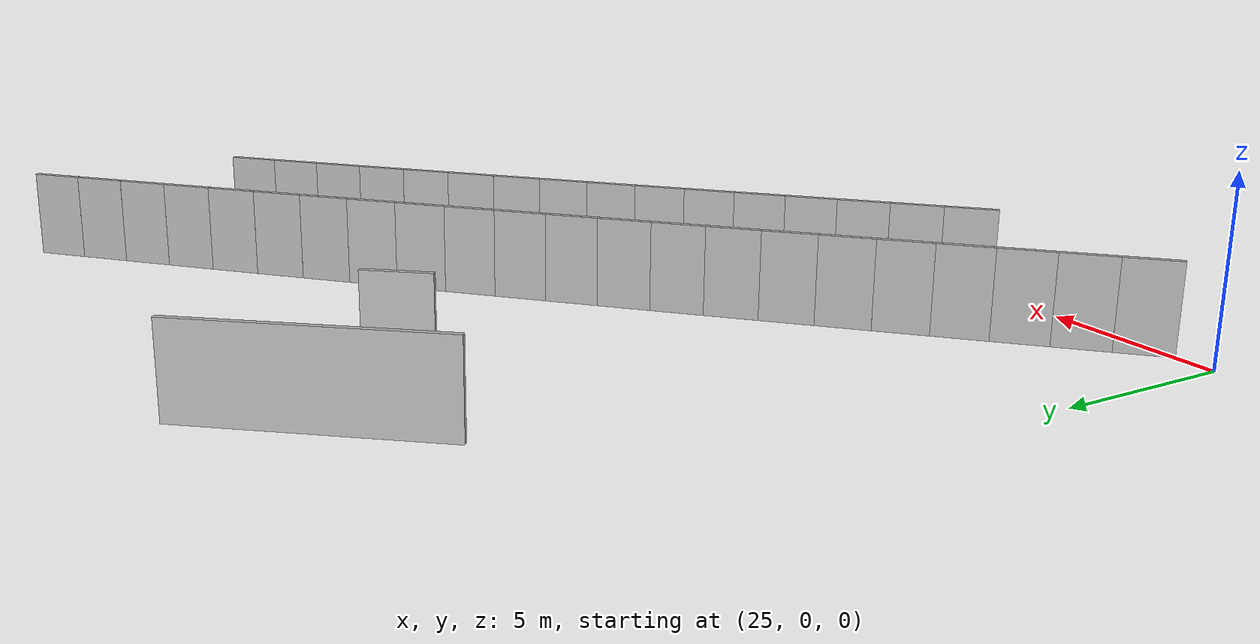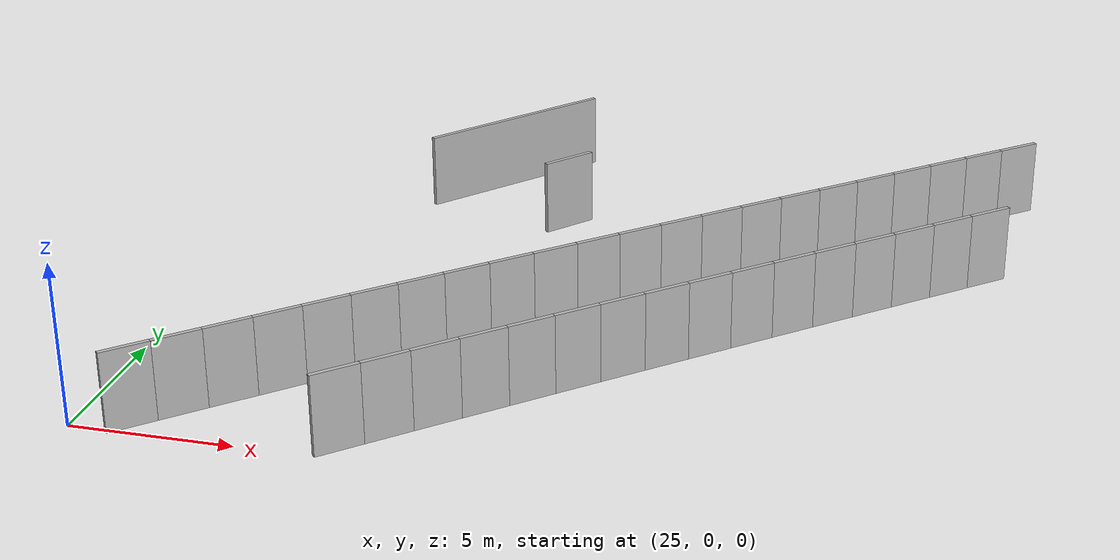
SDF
<?xml version="1.0" ?>
<sdf version="1.6">
  <model name="sps_1042">
    <pose frame="">0 0 0 0 -0 0</pose>
    <static>1</static>
    <self_collide>0</self_collide>
    <allow_auto_disable>0</allow_auto_disable>
    <link name="Wall215">
      <kinematic>0</kinematic>
      <gravity>1</gravity>
      <self_collide>0</self_collide>
      <collision name="collision">
        <geometry>
          <box>
            <size>6.97983 0.15 2.5</size>
          </box>
        </geometry>
        <pose frame="">0 0 0 0 -0 0</pose>
      </collision>
      <visual name="visual">
        <geometry>
          <box>
            <size>6.97983 0.15 2.5</size>
          </box>
        </geometry>
        <pose frame="">0 0 0 0 -0 0</pose>
        <cast_shadows>1</cast_shadows>
        <transparency>0.0</transparency>
      </visual>
      <pose frame="">32.2306 20.5702 1.25 0 0 -2.26727</pose>
    </link>
    <link name="Wall219">
      <kinematic>0</kinematic>
      <gravity>1</gravity>
      <self_collide>0</self_collide>
      <collision name="collision">
        <geometry>
          <box>
            <size>1.88109 0.15 2.5</size>
          </box>
        </geometry>
        <pose frame="">0 0 0 0 -0 0</pose>
      </collision>
      <visual name="visual">
        <geometry>
          <box>
            <size>1.88109 0.15 2.5</size>
          </box>
        </geometry>
        <pose frame="">0 0 0 0 -0 0</pose>
        <cast_shadows>1</cast_shadows>
        <transparency>0.0</transparency>
      </visual>
      <pose frame="">35.0712 17.1703 1.25 0 -0 0.876505</pose>
    </link>
    <link name="Wall3327">
      <kinematic>0</kinematic>
      <gravity>1</gravity>
      <self_collide>0</self_collide>
      <collision name="collision">
        <geometry>
          <box>
            <size>1.4966 0.15 2.5</size>
          </box>
        </geometry>
        <pose frame="">0 0 0 0 -0 0</pose>
      </collision>
      <visual name="visual">
        <geometry>
          <box>
            <size>1.4966 0.15 2.5</size>
          </box>
        </geometry>
        <pose frame="">0 0 0 0 -0 0</pose>
        <cast_shadows>1</cast_shadows>
        <transparency>0.0</transparency>
      </visual>
      <pose frame="">49.3434 15.7908 1.25 0 0 -2.40714</pose>
    </link>
    <link name="Wall3328">
      <kinematic>0</kinematic>
      <gravity>1</gravity>
      <self_collide>0</self_collide>
      <collision name="collision">
        <geometry>
          <box>
            <size>1.4964 0.15 2.5</size>
          </box>
        </geometry>
        <pose frame="">0 0 0 0 -0 0</pose>
      </collision>
      <visual name="visual">
        <geometry>
          <box>
            <size>1.4964 0.15 2.5</size>
          </box>
        </geometry>
        <pose frame="">0 0 0 0 -0 0</pose>
        <cast_shadows>1</cast_shadows>
        <transparency>0.0</transparency>
      </visual>
      <pose frame="">48.2335 14.787 1.25 0 0 -2.40553</pose>
    </link>
    <link name="Wall3329">
      <kinematic>0</kinematic>
      <gravity>1</gravity>
      <self_collide>0</self_collide>
      <collision name="collision">
        <geometry>
          <box>
            <size>1.49667 0.15 2.5</size>
          </box>
        </geometry>
        <pose frame="">0 0 0 0 -0 0</pose>
      </collision>
      <visual name="visual">
        <geometry>
          <box>
            <size>1.49667 0.15 2.5</size>
          </box>
        </geometry>
        <pose frame="">0 0 0 0 -0 0</pose>
        <cast_shadows>1</cast_shadows>
        <transparency>0.0</transparency>
      </visual>
      <pose frame="">47.1252 13.7814 1.25 0 0 -2.40394</pose>
    </link>
    <link name="Wall3330">
      <kinematic>0</kinematic>
      <gravity>1</gravity>
      <self_collide>0</self_collide>
      <collision name="collision">
        <geometry>
          <box>
            <size>1.49638 0.15 2.5</size>
          </box>
        </geometry>
        <pose frame="">0 0 0 0 -0 0</pose>
      </collision>
      <visual name="visual">
        <geometry>
          <box>
            <size>1.49638 0.15 2.5</size>
          </box>
        </geometry>
        <pose frame="">0 0 0 0 -0 0</pose>
        <cast_shadows>1</cast_shadows>
        <transparency>0.0</transparency>
      </visual>
      <pose frame="">46.0185 12.774 1.25 0 0 -2.40233</pose>
    </link>
    <link name="Wall3331">
      <kinematic>0</kinematic>
      <gravity>1</gravity>
      <self_collide>0</self_collide>
      <collision name="collision">
        <geometry>
          <box>
            <size>1.49663 0.15 2.5</size>
          </box>
        </geometry>
        <pose frame="">0 0 0 0 -0 0</pose>
      </collision>
      <visual name="visual">
        <geometry>
          <box>
            <size>1.49663 0.15 2.5</size>
          </box>
        </geometry>
        <pose frame="">0 0 0 0 -0 0</pose>
        <cast_shadows>1</cast_shadows>
        <transparency>0.0</transparency>
      </visual>
      <pose frame="">44.9134 11.7649 1.25 0 0 -2.40082</pose>
    </link>
    <link name="Wall3332">
      <kinematic>0</kinematic>
      <gravity>1</gravity>
      <self_collide>0</self_collide>
      <collision name="collision">
        <geometry>
          <box>
            <size>1.49635 0.15 2.5</size>
          </box>
        </geometry>
        <pose frame="">0 0 0 0 -0 0</pose>
      </collision>
      <visual name="visual">
        <geometry>
          <box>
            <size>1.49635 0.15 2.5</size>
          </box>
        </geometry>
        <pose frame="">0 0 0 0 -0 0</pose>
        <cast_shadows>1</cast_shadows>
        <transparency>0.0</transparency>
      </visual>
      <pose frame="">43.8099 10.7541 1.25 0 0 -2.39921</pose>
    </link>
    <link name="Wall3333">
      <kinematic>0</kinematic>
      <gravity>1</gravity>
      <self_collide>0</self_collide>
      <collision name="collision">
        <geometry>
          <box>
            <size>1.49655 0.15 2.5</size>
          </box>
        </geometry>
        <pose frame="">0 0 0 0 -0 0</pose>
      </collision>
      <visual name="visual">
        <geometry>
          <box>
            <size>1.49655 0.15 2.5</size>
          </box>
        </geometry>
        <pose frame="">0 0 0 0 -0 0</pose>
        <cast_shadows>1</cast_shadows>
        <transparency>0.0</transparency>
      </visual>
      <pose frame="">42.708 9.74159 1.25 0 0 -2.39768</pose>
    </link>
    <link name="Wall3334">
      <kinematic>0</kinematic>
      <gravity>1</gravity>
      <self_collide>0</self_collide>
      <collision name="collision">
        <geometry>
          <box>
            <size>1.49641 0.15 2.5</size>
          </box>
        </geometry>
        <pose frame="">0 0 0 0 -0 0</pose>
      </collision>
      <visual name="visual">
        <geometry>
          <box>
            <size>1.49641 0.15 2.5</size>
          </box>
        </geometry>
        <pose frame="">0 0 0 0 -0 0</pose>
        <cast_shadows>1</cast_shadows>
        <transparency>0.0</transparency>
      </visual>
      <pose frame="">41.6077 8.72728 1.25 0 0 -2.39598</pose>
    </link>
    <link name="Wall3335">
      <kinematic>0</kinematic>
      <gravity>1</gravity>
      <self_collide>0</self_collide>
      <collision name="collision">
        <geometry>
          <box>
            <size>1.49621 0.15 2.5</size>
          </box>
        </geometry>
        <pose frame="">0 0 0 0 -0 0</pose>
      </collision>
      <visual name="visual">
        <geometry>
          <box>
            <size>1.49621 0.15 2.5</size>
          </box>
        </geometry>
        <pose frame="">0 0 0 0 -0 0</pose>
        <cast_shadows>1</cast_shadows>
        <transparency>0.0</transparency>
      </visual>
      <pose frame="">40.5091 7.7115 1.25 0 0 -2.3948</pose>
    </link>
    <link name="Wall3336">
      <kinematic>0</kinematic>
      <gravity>1</gravity>
      <self_collide>0</self_collide>
      <collision name="collision">
        <geometry>
          <box>
            <size>1.4964 0.15 2.5</size>
          </box>
        </geometry>
        <pose frame="">0 0 0 0 -0 0</pose>
      </collision>
      <visual name="visual">
        <geometry>
          <box>
            <size>1.4964 0.15 2.5</size>
          </box>
        </geometry>
        <pose frame="">0 0 0 0 -0 0</pose>
        <cast_shadows>1</cast_shadows>
        <transparency>0.0</transparency>
      </visual>
      <pose frame="">39.4119 6.69401 1.25 0 0 -2.39286</pose>
    </link>
    <link name="Wall3337">
      <kinematic>0</kinematic>
      <gravity>1</gravity>
      <self_collide>0</self_collide>
      <collision name="collision">
        <geometry>
          <box>
            <size>1.49674 0.15 2.5</size>
          </box>
        </geometry>
        <pose frame="">0 0 0 0 -0 0</pose>
      </collision>
      <visual name="visual">
        <geometry>
          <box>
            <size>1.49674 0.15 2.5</size>
          </box>
        </geometry>
        <pose frame="">0 0 0 0 -0 0</pose>
        <cast_shadows>1</cast_shadows>
        <transparency>0.0</transparency>
      </visual>
      <pose frame="">38.3165 5.67439 1.25 0 0 -2.39124</pose>
    </link>
    <link name="Wall3338">
      <kinematic>0</kinematic>
      <gravity>1</gravity>
      <self_collide>0</self_collide>
      <collision name="collision">
        <geometry>
          <box>
            <size>1.49637 0.15 2.5</size>
          </box>
        </geometry>
        <pose frame="">0 0 0 0 -0 0</pose>
      </collision>
      <visual name="visual">
        <geometry>
          <box>
            <size>1.49637 0.15 2.5</size>
          </box>
        </geometry>
        <pose frame="">0 0 0 0 -0 0</pose>
        <cast_shadows>1</cast_shadows>
        <transparency>0.0</transparency>
      </visual>
      <pose frame="">37.2226 4.65309 1.25 0 0 -2.38977</pose>
    </link>
    <link name="Wall3339">
      <kinematic>0</kinematic>
      <gravity>1</gravity>
      <self_collide>0</self_collide>
      <collision name="collision">
        <geometry>
          <box>
            <size>1.49654 0.15 2.5</size>
          </box>
        </geometry>
        <pose frame="">0 0 0 0 -0 0</pose>
      </collision>
      <visual name="visual">
        <geometry>
          <box>
            <size>1.49654 0.15 2.5</size>
          </box>
        </geometry>
        <pose frame="">0 0 0 0 -0 0</pose>
        <cast_shadows>1</cast_shadows>
        <transparency>0.0</transparency>
      </visual>
      <pose frame="">36.1304 3.63011 1.25 0 0 -2.38804</pose>
    </link>
    <link name="Wall3340">
      <kinematic>0</kinematic>
      <gravity>1</gravity>
      <self_collide>0</self_collide>
      <collision name="collision">
        <geometry>
          <box>
            <size>1.49643 0.15 2.5</size>
          </box>
        </geometry>
        <pose frame="">0 0 0 0 -0 0</pose>
      </collision>
      <visual name="visual">
        <geometry>
          <box>
            <size>1.49643 0.15 2.5</size>
          </box>
        </geometry>
        <pose frame="">0 0 0 0 -0 0</pose>
        <cast_shadows>1</cast_shadows>
        <transparency>0.0</transparency>
      </visual>
      <pose frame="">35.0398 2.60539 1.25 0 0 -2.38663</pose>
    </link>
    <link name="Wall3341">
      <kinematic>0</kinematic>
      <gravity>1</gravity>
      <self_collide>0</self_collide>
      <collision name="collision">
        <geometry>
          <box>
            <size>1.49635 0.15 2.5</size>
          </box>
        </geometry>
        <pose frame="">0 0 0 0 -0 0</pose>
      </collision>
      <visual name="visual">
        <geometry>
          <box>
            <size>1.49635 0.15 2.5</size>
          </box>
        </geometry>
        <pose frame="">0 0 0 0 -0 0</pose>
        <cast_shadows>1</cast_shadows>
        <transparency>0.0</transparency>
      </visual>
      <pose frame="">33.9509 1.57899 1.25 0 0 -2.38484</pose>
    </link>
    <link name="Wall3342">
      <kinematic>0</kinematic>
      <gravity>1</gravity>
      <self_collide>0</self_collide>
      <collision name="collision">
        <geometry>
          <box>
            <size>1.49638 0.15 2.5</size>
          </box>
        </geometry>
        <pose frame="">0 0 0 0 -0 0</pose>
      </collision>
      <visual name="visual">
        <geometry>
          <box>
            <size>1.49638 0.15 2.5</size>
          </box>
        </geometry>
        <pose frame="">0 0 0 0 -0 0</pose>
        <cast_shadows>1</cast_shadows>
        <transparency>0.0</transparency>
      </visual>
      <pose frame="">32.8636 0.550918 1.25 0 0 -2.38351</pose>
    </link>
    <link name="Wall5935">
      <kinematic>0</kinematic>
      <gravity>1</gravity>
      <self_collide>0</self_collide>
      <collision name="collision">
        <geometry>
          <box>
            <size>1.50294 0.15 2.5</size>
          </box>
        </geometry>
        <pose frame="">0 0 0 0 -0 0</pose>
      </collision>
      <visual name="visual">
        <geometry>
          <box>
            <size>1.50294 0.15 2.5</size>
          </box>
        </geometry>
        <pose frame="">0 0 0 0 -0 0</pose>
        <cast_shadows>1</cast_shadows>
        <transparency>0.0</transparency>
      </visual>
      <pose frame="">49.9123 21.8683 1.25 0 0 -2.41182</pose>
    </link>
    <link name="Wall5936">
      <kinematic>0</kinematic>
      <gravity>1</gravity>
      <self_collide>0</self_collide>
      <collision name="collision">
        <geometry>
          <box>
            <size>1.50308 0.15 2.5</size>
          </box>
        </geometry>
        <pose frame="">0 0 0 0 -0 0</pose>
      </collision>
      <visual name="visual">
        <geometry>
          <box>
            <size>1.50308 0.15 2.5</size>
          </box>
        </geometry>
        <pose frame="">0 0 0 0 -0 0</pose>
        <cast_shadows>1</cast_shadows>
        <transparency>0.0</transparency>
      </visual>
      <pose frame="">48.7929 20.8654 1.25 0 0 -2.41032</pose>
    </link>
    <link name="Wall5937">
      <kinematic>0</kinematic>
      <gravity>1</gravity>
      <self_collide>0</self_collide>
      <collision name="collision">
        <geometry>
          <box>
            <size>1.50317 0.15 2.5</size>
          </box>
        </geometry>
        <pose frame="">0 0 0 0 -0 0</pose>
      </collision>
      <visual name="visual">
        <geometry>
          <box>
            <size>1.50317 0.15 2.5</size>
          </box>
        </geometry>
        <pose frame="">0 0 0 0 -0 0</pose>
        <cast_shadows>1</cast_shadows>
        <transparency>0.0</transparency>
      </visual>
      <pose frame="">47.6749 19.8607 1.25 0 0 -2.40873</pose>
    </link>
    <link name="Wall5938">
      <kinematic>0</kinematic>
      <gravity>1</gravity>
      <self_collide>0</self_collide>
      <collision name="collision">
        <geometry>
          <box>
            <size>1.50313 0.15 2.5</size>
          </box>
        </geometry>
        <pose frame="">0 0 0 0 -0 0</pose>
      </collision>
      <visual name="visual">
        <geometry>
          <box>
            <size>1.50313 0.15 2.5</size>
          </box>
        </geometry>
        <pose frame="">0 0 0 0 -0 0</pose>
        <cast_shadows>1</cast_shadows>
        <transparency>0.0</transparency>
      </visual>
      <pose frame="">46.5584 18.8542 1.25 0 0 -2.40712</pose>
    </link>
    <link name="Wall5939">
      <kinematic>0</kinematic>
      <gravity>1</gravity>
      <self_collide>0</self_collide>
      <collision name="collision">
        <geometry>
          <box>
            <size>1.50326 0.15 2.5</size>
          </box>
        </geometry>
        <pose frame="">0 0 0 0 -0 0</pose>
      </collision>
      <visual name="visual">
        <geometry>
          <box>
            <size>1.50326 0.15 2.5</size>
          </box>
        </geometry>
        <pose frame="">0 0 0 0 -0 0</pose>
        <cast_shadows>1</cast_shadows>
        <transparency>0.0</transparency>
      </visual>
      <pose frame="">45.4437 17.8458 1.25 0 0 -2.40539</pose>
    </link>
    <link name="Wall5940">
      <kinematic>0</kinematic>
      <gravity>1</gravity>
      <self_collide>0</self_collide>
      <collision name="collision">
        <geometry>
          <box>
            <size>1.50293 0.15 2.5</size>
          </box>
        </geometry>
        <pose frame="">0 0 0 0 -0 0</pose>
      </collision>
      <visual name="visual">
        <geometry>
          <box>
            <size>1.50293 0.15 2.5</size>
          </box>
        </geometry>
        <pose frame="">0 0 0 0 -0 0</pose>
        <cast_shadows>1</cast_shadows>
        <transparency>0.0</transparency>
      </visual>
      <pose frame="">44.3306 16.8357 1.25 0 0 -2.40394</pose>
    </link>
    <link name="Wall5941">
      <kinematic>0</kinematic>
      <gravity>1</gravity>
      <self_collide>0</self_collide>
      <collision name="collision">
        <geometry>
          <box>
            <size>1.50304 0.15 2.5</size>
          </box>
        </geometry>
        <pose frame="">0 0 0 0 -0 0</pose>
      </collision>
      <visual name="visual">
        <geometry>
          <box>
            <size>1.50304 0.15 2.5</size>
          </box>
        </geometry>
        <pose frame="">0 0 0 0 -0 0</pose>
        <cast_shadows>1</cast_shadows>
        <transparency>0.0</transparency>
      </visual>
      <pose frame="">43.219 15.824 1.25 0 0 -2.40241</pose>
    </link>
    <link name="Wall5942">
      <kinematic>0</kinematic>
      <gravity>1</gravity>
      <self_collide>0</self_collide>
      <collision name="collision">
        <geometry>
          <box>
            <size>1.5031 0.15 2.5</size>
          </box>
        </geometry>
        <pose frame="">0 0 0 0 -0 0</pose>
      </collision>
      <visual name="visual">
        <geometry>
          <box>
            <size>1.5031 0.15 2.5</size>
          </box>
        </geometry>
        <pose frame="">0 0 0 0 -0 0</pose>
        <cast_shadows>1</cast_shadows>
        <transparency>0.0</transparency>
      </visual>
      <pose frame="">42.1091 14.8105 1.25 0 0 -2.4008</pose>
    </link>
    <link name="Wall5943">
      <kinematic>0</kinematic>
      <gravity>1</gravity>
      <self_collide>0</self_collide>
      <collision name="collision">
        <geometry>
          <box>
            <size>1.50304 0.15 2.5</size>
          </box>
        </geometry>
        <pose frame="">0 0 0 0 -0 0</pose>
      </collision>
      <visual name="visual">
        <geometry>
          <box>
            <size>1.50304 0.15 2.5</size>
          </box>
        </geometry>
        <pose frame="">0 0 0 0 -0 0</pose>
        <cast_shadows>1</cast_shadows>
        <transparency>0.0</transparency>
      </visual>
      <pose frame="">41.0008 13.7952 1.25 0 0 -2.39911</pose>
    </link>
    <link name="Wall5944">
      <kinematic>0</kinematic>
      <gravity>1</gravity>
      <self_collide>0</self_collide>
      <collision name="collision">
        <geometry>
          <box>
            <size>1.50316 0.15 2.5</size>
          </box>
        </geometry>
        <pose frame="">0 0 0 0 -0 0</pose>
      </collision>
      <visual name="visual">
        <geometry>
          <box>
            <size>1.50316 0.15 2.5</size>
          </box>
        </geometry>
        <pose frame="">0 0 0 0 -0 0</pose>
        <cast_shadows>1</cast_shadows>
        <transparency>0.0</transparency>
      </visual>
      <pose frame="">39.894 12.7781 1.25 0 0 -2.39764</pose>
    </link>
    <link name="Wall5945">
      <kinematic>0</kinematic>
      <gravity>1</gravity>
      <self_collide>0</self_collide>
      <collision name="collision">
        <geometry>
          <box>
            <size>1.50323 0.15 2.5</size>
          </box>
        </geometry>
        <pose frame="">0 0 0 0 -0 0</pose>
      </collision>
      <visual name="visual">
        <geometry>
          <box>
            <size>1.50323 0.15 2.5</size>
          </box>
        </geometry>
        <pose frame="">0 0 0 0 -0 0</pose>
        <cast_shadows>1</cast_shadows>
        <transparency>0.0</transparency>
      </visual>
      <pose frame="">38.7888 11.7592 1.25 0 0 -2.39597</pose>
    </link>
    <link name="Wall5946">
      <kinematic>0</kinematic>
      <gravity>1</gravity>
      <self_collide>0</self_collide>
      <collision name="collision">
        <geometry>
          <box>
            <size>1.50297 0.15 2.5</size>
          </box>
        </geometry>
        <pose frame="">0 0 0 0 -0 0</pose>
      </collision>
      <visual name="visual">
        <geometry>
          <box>
            <size>1.50297 0.15 2.5</size>
          </box>
        </geometry>
        <pose frame="">0 0 0 0 -0 0</pose>
        <cast_shadows>1</cast_shadows>
        <transparency>0.0</transparency>
      </visual>
      <pose frame="">37.6854 10.7386 1.25 0 0 -2.39442</pose>
    </link>
    <link name="Wall5947">
      <kinematic>0</kinematic>
      <gravity>1</gravity>
      <self_collide>0</self_collide>
      <collision name="collision">
        <geometry>
          <box>
            <size>1.50306 0.15 2.5</size>
          </box>
        </geometry>
        <pose frame="">0 0 0 0 -0 0</pose>
      </collision>
      <visual name="visual">
        <geometry>
          <box>
            <size>1.50306 0.15 2.5</size>
          </box>
        </geometry>
        <pose frame="">0 0 0 0 -0 0</pose>
        <cast_shadows>1</cast_shadows>
        <transparency>0.0</transparency>
      </visual>
      <pose frame="">36.5835 9.71641 1.25 0 0 -2.39299</pose>
    </link>
    <link name="Wall5948">
      <kinematic>0</kinematic>
      <gravity>1</gravity>
      <self_collide>0</self_collide>
      <collision name="collision">
        <geometry>
          <box>
            <size>1.50313 0.15 2.5</size>
          </box>
        </geometry>
        <pose frame="">0 0 0 0 -0 0</pose>
      </collision>
      <visual name="visual">
        <geometry>
          <box>
            <size>1.50313 0.15 2.5</size>
          </box>
        </geometry>
        <pose frame="">0 0 0 0 -0 0</pose>
        <cast_shadows>1</cast_shadows>
        <transparency>0.0</transparency>
      </visual>
      <pose frame="">35.4831 8.6924 1.25 0 0 -2.3912</pose>
    </link>
    <link name="Wall5949">
      <kinematic>0</kinematic>
      <gravity>1</gravity>
      <self_collide>0</self_collide>
      <collision name="collision">
        <geometry>
          <box>
            <size>1.50273 0.15 2.5</size>
          </box>
        </geometry>
        <pose frame="">0 0 0 0 -0 0</pose>
      </collision>
      <visual name="visual">
        <geometry>
          <box>
            <size>1.50273 0.15 2.5</size>
          </box>
        </geometry>
        <pose frame="">0 0 0 0 -0 0</pose>
        <cast_shadows>1</cast_shadows>
        <transparency>0.0</transparency>
      </visual>
      <pose frame="">34.3845 7.66688 1.25 0 0 -2.39006</pose>
    </link>
    <link name="Wall5950">
      <kinematic>0</kinematic>
      <gravity>1</gravity>
      <self_collide>0</self_collide>
      <collision name="collision">
        <geometry>
          <box>
            <size>1.50281 0.15 2.5</size>
          </box>
        </geometry>
        <pose frame="">0 0 0 0 -0 0</pose>
      </collision>
      <visual name="visual">
        <geometry>
          <box>
            <size>1.50281 0.15 2.5</size>
          </box>
        </geometry>
        <pose frame="">0 0 0 0 -0 0</pose>
        <cast_shadows>1</cast_shadows>
        <transparency>0.0</transparency>
      </visual>
      <pose frame="">33.2874 6.63988 1.25 0 0 -2.38828</pose>
    </link>
    <link name="Wall5951">
      <kinematic>0</kinematic>
      <gravity>1</gravity>
      <self_collide>0</self_collide>
      <collision name="collision">
        <geometry>
          <box>
            <size>1.50299 0.15 2.5</size>
          </box>
        </geometry>
        <pose frame="">0 0 0 0 -0 0</pose>
      </collision>
      <visual name="visual">
        <geometry>
          <box>
            <size>1.50299 0.15 2.5</size>
          </box>
        </geometry>
        <pose frame="">0 0 0 0 -0 0</pose>
        <cast_shadows>1</cast_shadows>
        <transparency>0.0</transparency>
      </visual>
      <pose frame="">32.1921 5.61079 1.25 0 0 -2.38644</pose>
    </link>
    <link name="Wall5952">
      <kinematic>0</kinematic>
      <gravity>1</gravity>
      <self_collide>0</self_collide>
      <collision name="collision">
        <geometry>
          <box>
            <size>1.5031 0.15 2.5</size>
          </box>
        </geometry>
        <pose frame="">0 0 0 0 -0 0</pose>
      </collision>
      <visual name="visual">
        <geometry>
          <box>
            <size>1.5031 0.15 2.5</size>
          </box>
        </geometry>
        <pose frame="">0 0 0 0 -0 0</pose>
        <cast_shadows>1</cast_shadows>
        <transparency>0.0</transparency>
      </visual>
      <pose frame="">31.0983 4.57982 1.25 0 0 -2.385</pose>
    </link>
    <link name="Wall5953">
      <kinematic>0</kinematic>
      <gravity>1</gravity>
      <self_collide>0</self_collide>
      <collision name="collision">
        <geometry>
          <box>
            <size>1.50302 0.15 2.5</size>
          </box>
        </geometry>
        <pose frame="">0 0 0 0 -0 0</pose>
      </collision>
      <visual name="visual">
        <geometry>
          <box>
            <size>1.50302 0.15 2.5</size>
          </box>
        </geometry>
        <pose frame="">0 0 0 0 -0 0</pose>
        <cast_shadows>1</cast_shadows>
        <transparency>0.0</transparency>
      </visual>
      <pose frame="">30.0062 3.5471 1.25 0 0 -2.38328</pose>
    </link>
    <link name="Wall5954">
      <kinematic>0</kinematic>
      <gravity>1</gravity>
      <self_collide>0</self_collide>
      <collision name="collision">
        <geometry>
          <box>
            <size>1.50309 0.15 2.5</size>
          </box>
        </geometry>
        <pose frame="">0 0 0 0 -0 0</pose>
      </collision>
      <visual name="visual">
        <geometry>
          <box>
            <size>1.50309 0.15 2.5</size>
          </box>
        </geometry>
        <pose frame="">0 0 0 0 -0 0</pose>
        <cast_shadows>1</cast_shadows>
        <transparency>0.0</transparency>
      </visual>
      <pose frame="">28.9159 2.51259 1.25 0 0 -2.38169</pose>
    </link>
    <link name="Wall5955">
      <kinematic>0</kinematic>
      <gravity>1</gravity>
      <self_collide>0</self_collide>
      <collision name="collision">
        <geometry>
          <box>
            <size>1.50316 0.15 2.5</size>
          </box>
        </geometry>
        <pose frame="">0 0 0 0 -0 0</pose>
      </collision>
      <visual name="visual">
        <geometry>
          <box>
            <size>1.50316 0.15 2.5</size>
          </box>
        </geometry>
        <pose frame="">0 0 0 0 -0 0</pose>
        <cast_shadows>1</cast_shadows>
        <transparency>0.0</transparency>
      </visual>
      <pose frame="">27.827 1.4763 1.25 0 0 -2.38011</pose>
    </link>
    <link name="Wall5956">
      <kinematic>0</kinematic>
      <gravity>1</gravity>
      <self_collide>0</self_collide>
      <collision name="collision">
        <geometry>
          <box>
            <size>1.50311 0.15 2.5</size>
          </box>
        </geometry>
        <pose frame="">0 0 0 0 -0 0</pose>
      </collision>
      <visual name="visual">
        <geometry>
          <box>
            <size>1.50311 0.15 2.5</size>
          </box>
        </geometry>
        <pose frame="">0 0 0 0 -0 0</pose>
        <cast_shadows>1</cast_shadows>
        <transparency>0.0</transparency>
      </visual>
      <pose frame="">26.7399 0.438308 1.25 0 0 -2.37856</pose>
    </link>
  </model>
</sdf>
